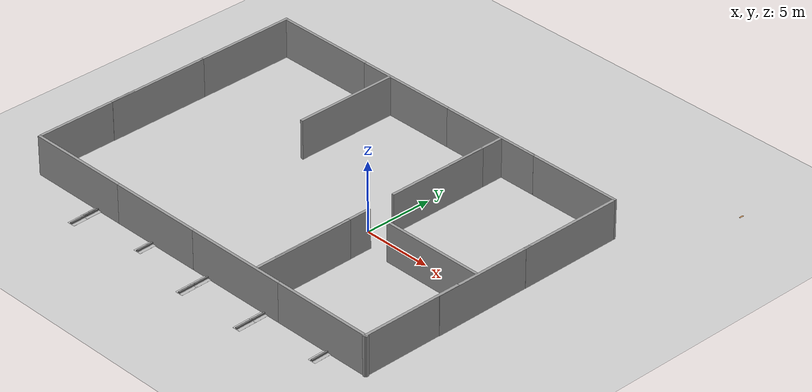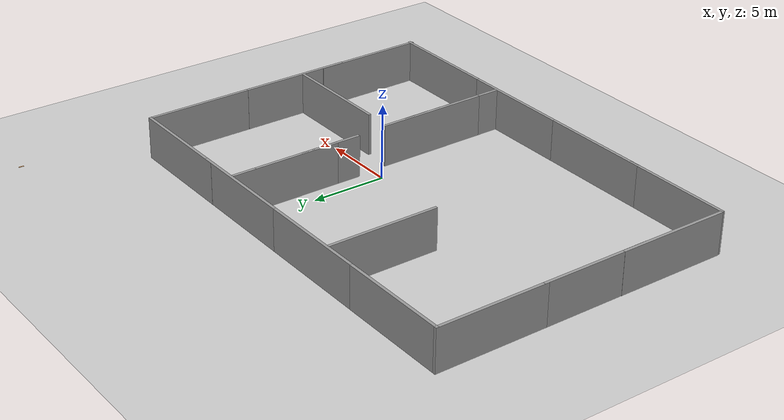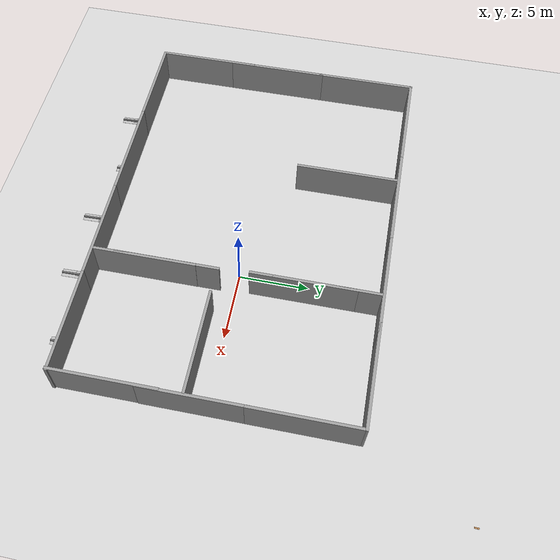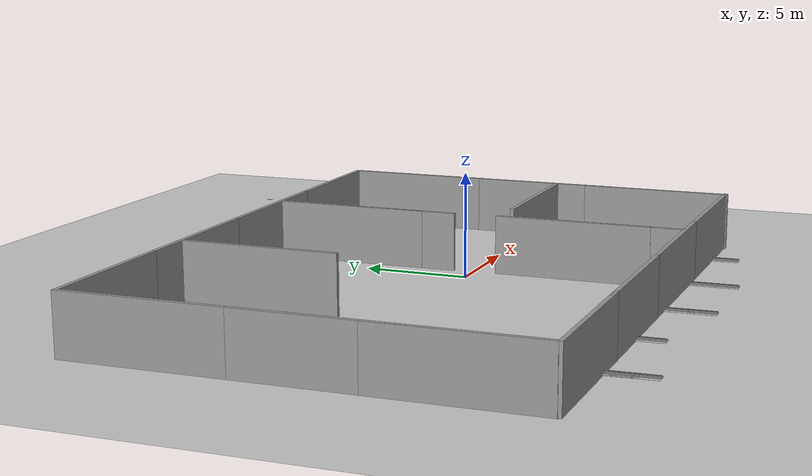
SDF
<sdf version="1.7">
 <world name="default">
  <model name="ground_plane">
   <static>1</static>
   <link name="link">
    <collision name="collision">
     <geometry><plane><normal>0 0 1</normal><size>100 100</size></plane></geometry>
     <surface>
      <contact><collide_bitmask>65535</collide_bitmask></contact>
      <friction><ode><mu>100</mu><mu2>50</mu2></ode></friction>
     </surface>
    </collision>
    <visual name="visual">
     <cast_shadows>0</cast_shadows>
     <geometry><plane><normal>0 0 1</normal><size>100 100</size></plane></geometry>
     <material>
      <script><uri>file://media/materials/scripts/gazebo.material</uri><name>Gazebo/Grey</name></script>
     </material>
    </visual>
   </link>
  </model>
  <model name="grey_wall">
   <static>1</static>
   <link name="link">
    <pose>0 0 1.4 0 -0 0</pose>
    <collision name="collision"><geometry><box><size>7.5 0.2 2.8</size></box></geometry></collision>
    <visual name="visual">
     <cast_shadows>0</cast_shadows>
     <geometry><box><size>7.5 0.2 2.8</size></box></geometry>
     <material>
      <script>
       <uri>https://fuel.ignitionrobotics.org/1.0/openrobotics/models/grey wall/2/files/materials/scripts</uri>
       <uri>https://fuel.ignitionrobotics.org/1.0/openrobotics/models/grey wall/2/files/materials/textures</uri>
       <name>vrc/grey_wall</name>
      </script>
     </material>
    </visual>
   </link>
   <pose>0.12422 10.16 0 0 -0 0</pose>
  </model>
  <model name="grey_wall_clone">
   <static>1</static>
   <link name="link">
    <pose>0 0 1.4 0 -0 0</pose>
    <collision name="collision"><geometry><box><size>7.5 0.2 2.8</size></box></geometry></collision>
    <visual name="visual">
     <cast_shadows>0</cast_shadows>
     <geometry><box><size>7.5 0.2 2.8</size></box></geometry>
     <material>
      <script>
       <uri>https://fuel.ignitionrobotics.org/1.0/openrobotics/models/grey wall/2/files/materials/scripts</uri>
       <uri>https://fuel.ignitionrobotics.org/1.0/openrobotics/models/grey wall/2/files/materials/textures</uri>
       <name>vrc/grey_wall</name>
      </script>
     </material>
    </visual>
   </link>
   <pose>6.92563 10.1635 0 0 -0 0</pose>
  </model>
  <model name="grey_wall_clone_0">
   <static>1</static>
   <link name="link">
    <pose>0 0 1.4 0 -0 0</pose>
    <collision name="collision"><geometry><box><size>7.5 0.2 2.8</size></box></geometry></collision>
    <visual name="visual">
     <cast_shadows>0</cast_shadows>
     <geometry><box><size>7.5 0.2 2.8</size></box></geometry>
     <material>
      <script>
       <uri>https://fuel.ignitionrobotics.org/1.0/openrobotics/models/grey wall/2/files/materials/scripts</uri>
       <uri>https://fuel.ignitionrobotics.org/1.0/openrobotics/models/grey wall/2/files/materials/textures</uri>
       <name>vrc/grey_wall</name>
      </script>
     </material>
    </visual>
   </link>
   <pose>-7.35355 10.1615 0 0 -0 0</pose>
  </model>
  <model name="grey_wall_clone_1">
   <static>1</static>
   <link name="link">
    <pose>0 0 1.4 0 -0 0</pose>
    <collision name="collision"><geometry><box><size>7.5 0.2 2.8</size></box></geometry></collision>
    <visual name="visual">
     <cast_shadows>0</cast_shadows>
     <geometry><box><size>7.5 0.2 2.8</size></box></geometry>
     <material>
      <script>
       <uri>https://fuel.ignitionrobotics.org/1.0/openrobotics/models/grey wall/2/files/materials/scripts</uri>
       <uri>https://fuel.ignitionrobotics.org/1.0/openrobotics/models/grey wall/2/files/materials/textures</uri>
       <name>vrc/grey_wall</name>
      </script>
     </material>
    </visual>
   </link>
   <pose>-14.8373 10.1676 0 0 -0 0</pose>
  </model>
  <model name="grey_wall_clone_2">
   <static>1</static>
   <link name="link">
    <pose>0 0 1.4 0 -0 0</pose>
    <collision name="collision"><geometry><box><size>7.5 0.2 2.8</size></box></geometry></collision>
    <visual name="visual">
     <cast_shadows>0</cast_shadows>
     <geometry><box><size>7.5 0.2 2.8</size></box></geometry>
     <material>
      <script>
       <uri>https://fuel.ignitionrobotics.org/1.0/openrobotics/models/grey wall/2/files/materials/scripts</uri>
       <uri>https://fuel.ignitionrobotics.org/1.0/openrobotics/models/grey wall/2/files/materials/textures</uri>
       <name>vrc/grey_wall</name>
      </script>
     </material>
    </visual>
   </link>
   <pose>7.07156 -10.1705 0 0 -0 0</pose>
  </model>
  <model name="grey_wall_clone_3">
   <static>1</static>
   <link name="link">
    <pose>0 0 1.4 0 -0 0</pose>
    <collision name="collision"><geometry><box><size>7.5 0.2 2.8</size></box></geometry></collision>
    <visual name="visual">
     <cast_shadows>0</cast_shadows>
     <geometry><box><size>7.5 0.2 2.8</size></box></geometry>
     <material>
      <script>
       <uri>https://fuel.ignitionrobotics.org/1.0/openrobotics/models/grey wall/2/files/materials/scripts</uri>
       <uri>https://fuel.ignitionrobotics.org/1.0/openrobotics/models/grey wall/2/files/materials/textures</uri>
       <name>vrc/grey_wall</name>
      </script>
     </material>
    </visual>
   </link>
   <pose>-0.417375 -10.1706 0 0 -0 0</pose>
  </model>
  <model name="grey_wall_clone_4">
   <static>1</static>
   <link name="link">
    <pose>0 0 1.4 0 -0 0</pose>
    <collision name="collision"><geometry><box><size>7.5 0.2 2.8</size></box></geometry></collision>
    <visual name="visual">
     <cast_shadows>0</cast_shadows>
     <geometry><box><size>7.5 0.2 2.8</size></box></geometry>
     <material>
      <script>
       <uri>https://fuel.ignitionrobotics.org/1.0/openrobotics/models/grey wall/2/files/materials/scripts</uri>
       <uri>https://fuel.ignitionrobotics.org/1.0/openrobotics/models/grey wall/2/files/materials/textures</uri>
       <name>vrc/grey_wall</name>
      </script>
     </material>
    </visual>
   </link>
   <pose>-7.91135 -10.1718 0 0 -0 0</pose>
  </model>
  <model name="grey_wall_clone_5">
   <static>1</static>
   <link name="link">
    <pose>0 0 1.4 0 -0 0</pose>
    <collision name="collision"><geometry><box><size>7.5 0.2 2.8</size></box></geometry></collision>
    <visual name="visual">
     <cast_shadows>0</cast_shadows>
     <geometry><box><size>7.5 0.2 2.8</size></box></geometry>
     <material>
      <script>
       <uri>https://fuel.ignitionrobotics.org/1.0/openrobotics/models/grey wall/2/files/materials/scripts</uri>
       <uri>https://fuel.ignitionrobotics.org/1.0/openrobotics/models/grey wall/2/files/materials/textures</uri>
       <name>vrc/grey_wall</name>
      </script>
     </material>
    </visual>
   </link>
   <pose>-14.7388 -10.1723 0 0 -0 0</pose>
  </model>
  <model name="frc2016_rockwall">
   <static>1</static>
   <link name="link">
    <inertial>
     <mass>10</mass>
     <pose>0 0 0.08974 0 -0 0</pose>
     <inertia><ixx>0.327091</ixx><ixy>0</ixy><ixz>0</ixz><iyy>1.37417</iyy><iyz>0</iyz><izz>1.64109</izz></inertia>
    </inertial>
    <visual name="platform">
     <pose>0 0 0.06432 0 -0 0</pose>
     <geometry><box><size>1.27 0.5969 0.003175</size></box></geometry>
    </visual>
    <collision name="platform">
     <pose>0 0 0.06432 0 -0 0</pose>
     <geometry><box><size>1.27 0.5969 0.003175</size></box></geometry>
    </collision>
    <visual name="up1">
     <pose>0 0.05166 0.12537 0 -0 0</pose>
     <geometry><box><size>1.27 0.00462 0.11892</size></box></geometry>
     <material><ambient>0.46 0.46 0.46 1</ambient><diffuse>0.46 0.46 0.46 1</diffuse></material>
    </visual>
    <collision name="up1">
     <pose>0 0.05166 0.12537 0 -0 0</pose>
     <geometry><box><size>1.27 0.00462 0.11892</size></box></geometry>
    </collision>
    <visual name="up2">
     <pose>0 -0.05801 0.12537 0 -0 0</pose>
     <geometry><box><size>1.27 0.00462 0.11892</size></box></geometry>
     <material><ambient>0.46 0.46 0.46 1</ambient><diffuse>0.46 0.46 0.46 1</diffuse></material>
    </visual>
    <collision name="up2">
     <pose>0 -0.05801 0.12537 0 -0 0</pose>
     <geometry><box><size>1.27 0.00462 0.11892</size></box></geometry>
    </collision>
    <visual name="top">
     <pose>0 -0.00249 0.18252 0 -0 0</pose>
     <geometry><box><size>1.27 0.1143 0.00462</size></box></geometry>
     <material><ambient>0.46 0.46 0.46 1</ambient><diffuse>0.46 0.46 0.46 1</diffuse></material>
    </visual>
    <collision name="top">
     <pose>0 -0.00249 0.18252 0 -0 0</pose>
     <geometry><box><size>1.27 0.1143 0.00462</size></box></geometry>
    </collision>
   </link>
   <pose>7.57205 -10.9231 0 0 -0 1.59626</pose>
  </model>
  <model name="grey_wall_clone_2_clone">
   <static>1</static>
   <link name="link">
    <pose>0 0 1.4 0 -0 0</pose>
    <collision name="collision"><geometry><box><size>7.5 0.2 2.8</size></box></geometry></collision>
    <visual name="visual">
     <cast_shadows>0</cast_shadows>
     <geometry><box><size>7.5 0.2 2.8</size></box></geometry>
     <material>
      <script>
       <uri>https://fuel.ignitionrobotics.org/1.0/openrobotics/models/grey wall/2/files/materials/scripts</uri>
       <uri>https://fuel.ignitionrobotics.org/1.0/openrobotics/models/grey wall/2/files/materials/textures</uri>
       <name>vrc/grey_wall</name>
      </script>
     </material>
    </visual>
   </link>
   <pose>10.6239 -6.57923 0 0 -0 1.5756</pose>
  </model>
  <model name="grey_wall_clone_2_clone_clone">
   <static>1</static>
   <link name="link">
    <pose>0 0 1.4 0 -0 0</pose>
    <collision name="collision"><geometry><box><size>7.5 0.2 2.8</size></box></geometry></collision>
    <visual name="visual">
     <cast_shadows>0</cast_shadows>
     <geometry><box><size>7.5 0.2 2.8</size></box></geometry>
     <material>
      <script>
       <uri>https://fuel.ignitionrobotics.org/1.0/openrobotics/models/grey wall/2/files/materials/scripts</uri>
       <uri>https://fuel.ignitionrobotics.org/1.0/openrobotics/models/grey wall/2/files/materials/textures</uri>
       <name>vrc/grey_wall</name>
      </script>
     </material>
    </visual>
   </link>
   <pose>10.6274 -0.701461 0 0 -0 1.5756</pose>
  </model>
  <model name="grey_wall_clone_2_clone_clone_0">
   <static>1</static>
   <link name="link">
    <pose>0 0 1.4 0 -0 0</pose>
    <collision name="collision"><geometry><box><size>7.5 0.2 2.8</size></box></geometry></collision>
    <visual name="visual">
     <cast_shadows>0</cast_shadows>
     <geometry><box><size>7.5 0.2 2.8</size></box></geometry>
     <material>
      <script>
       <uri>https://fuel.ignitionrobotics.org/1.0/openrobotics/models/grey wall/2/files/materials/scripts</uri>
       <uri>https://fuel.ignitionrobotics.org/1.0/openrobotics/models/grey wall/2/files/materials/textures</uri>
       <name>vrc/grey_wall</name>
      </script>
     </material>
    </visual>
   </link>
   <pose>10.5981 6.34643 0 0 -0 1.5756</pose>
  </model>
  <model name="grey_wall_clone_3_clone">
   <static>1</static>
   <link name="link">
    <pose>0 0 1.4 0 -0 0</pose>
    <collision name="collision"><geometry><box><size>7.5 0.2 2.8</size></box></geometry></collision>
    <visual name="visual">
     <cast_shadows>0</cast_shadows>
     <geometry><box><size>7.5 0.2 2.8</size></box></geometry>
     <material>
      <script>
       <uri>https://fuel.ignitionrobotics.org/1.0/openrobotics/models/grey wall/2/files/materials/scripts</uri>
       <uri>https://fuel.ignitionrobotics.org/1.0/openrobotics/models/grey wall/2/files/materials/textures</uri>
       <name>vrc/grey_wall</name>
      </script>
     </material>
    </visual>
   </link>
   <pose>6.82309 -1.27324 0 0 -0 0</pose>
  </model>
  <model name="grey_wall_clone_2_clone_clone_1">
   <static>1</static>
   <link name="link">
    <pose>0 0 1.4 0 -0 0</pose>
    <collision name="collision"><geometry><box><size>7.5 0.2 2.8</size></box></geometry></collision>
    <visual name="visual">
     <cast_shadows>0</cast_shadows>
     <geometry><box><size>7.5 0.2 2.8</size></box></geometry>
     <material>
      <script>
       <uri>https://fuel.ignitionrobotics.org/1.0/openrobotics/models/grey wall/2/files/materials/scripts</uri>
       <uri>https://fuel.ignitionrobotics.org/1.0/openrobotics/models/grey wall/2/files/materials/textures</uri>
       <name>vrc/grey_wall</name>
      </script>
     </material>
    </visual>
   </link>
   <pose>1.30679 -4.83365 0 0 -0 1.5756</pose>
  </model>
  <model name="grey_wall_clone_2_clone_clone_1_clone">
   <static>1</static>
   <link name="link">
    <pose>0 0 1.4 0 -0 0</pose>
    <collision name="collision"><geometry><box><size>7.5 0.2 2.8</size></box></geometry></collision>
    <visual name="visual">
     <cast_shadows>0</cast_shadows>
     <geometry><box><size>7.5 0.2 2.8</size></box></geometry>
     <material>
      <script>
       <uri>https://fuel.ignitionrobotics.org/1.0/openrobotics/models/grey wall/2/files/materials/scripts</uri>
       <uri>https://fuel.ignitionrobotics.org/1.0/openrobotics/models/grey wall/2/files/materials/textures</uri>
       <name>vrc/grey_wall</name>
      </script>
     </material>
    </visual>
   </link>
   <pose>1.32492 -6.49418 0 0 -0 1.5756</pose>
  </model>
  <model name="frc2016_rockwall_clone_6">
   <static>1</static>
   <link name="link">
    <inertial>
     <mass>10</mass>
     <pose>0 0 0.08974 0 -0 0</pose>
     <inertia><ixx>0.327091</ixx><ixy>0</ixy><ixz>0</ixz><iyy>1.37417</iyy><iyz>0</iyz><izz>1.64109</izz></inertia>
    </inertial>
    <visual name="platform">
     <pose>0 0 0.06432 0 -0 0</pose>
     <geometry><box><size>1.27 0.5969 0.003175</size></box></geometry>
    </visual>
    <collision name="platform">
     <pose>0 0 0.06432 0 -0 0</pose>
     <geometry><box><size>1.27 0.5969 0.003175</size></box></geometry>
    </collision>
    <visual name="up1">
     <pose>0 0.05166 0.12537 0 -0 0</pose>
     <geometry><box><size>1.27 0.00462 0.11892</size></box></geometry>
     <material><ambient>0.46 0.46 0.46 1</ambient><diffuse>0.46 0.46 0.46 1</diffuse></material>
    </visual>
    <collision name="up1">
     <pose>0 0.05166 0.12537 0 -0 0</pose>
     <geometry><box><size>1.27 0.00462 0.11892</size></box></geometry>
    </collision>
    <visual name="up2">
     <pose>0 -0.05801 0.12537 0 -0 0</pose>
     <geometry><box><size>1.27 0.00462 0.11892</size></box></geometry>
     <material><ambient>0.46 0.46 0.46 1</ambient><diffuse>0.46 0.46 0.46 1</diffuse></material>
    </visual>
    <collision name="up2">
     <pose>0 -0.05801 0.12537 0 -0 0</pose>
     <geometry><box><size>1.27 0.00462 0.11892</size></box></geometry>
    </collision>
    <visual name="top">
     <pose>0 -0.00249 0.18252 0 -0 0</pose>
     <geometry><box><size>1.27 0.1143 0.00462</size></box></geometry>
     <material><ambient>0.46 0.46 0.46 1</ambient><diffuse>0.46 0.46 0.46 1</diffuse></material>
    </visual>
    <collision name="top">
     <pose>0 -0.00249 0.18252 0 -0 0</pose>
     <geometry><box><size>1.27 0.1143 0.00462</size></box></geometry>
    </collision>
   </link>
   <pose>2.20397 -10.9427 0 0 -0 1.59626</pose>
  </model>
  <model name="frc2016_rockwall_clone_7">
   <static>1</static>
   <link name="link">
    <inertial>
     <mass>10</mass>
     <pose>0 0 0.08974 0 -0 0</pose>
     <inertia><ixx>0.327091</ixx><ixy>0</ixy><ixz>0</ixz><iyy>1.37417</iyy><iyz>0</iyz><izz>1.64109</izz></inertia>
    </inertial>
    <visual name="platform">
     <pose>0 0 0.06432 0 -0 0</pose>
     <geometry><box><size>1.27 0.5969 0.003175</size></box></geometry>
    </visual>
    <collision name="platform">
     <pose>0 0 0.06432 0 -0 0</pose>
     <geometry><box><size>1.27 0.5969 0.003175</size></box></geometry>
    </collision>
    <visual name="up1">
     <pose>0 0.05166 0.12537 0 -0 0</pose>
     <geometry><box><size>1.27 0.00462 0.11892</size></box></geometry>
     <material><ambient>0.46 0.46 0.46 1</ambient><diffuse>0.46 0.46 0.46 1</diffuse></material>
    </visual>
    <collision name="up1">
     <pose>0 0.05166 0.12537 0 -0 0</pose>
     <geometry><box><size>1.27 0.00462 0.11892</size></box></geometry>
    </collision>
    <visual name="up2">
     <pose>0 -0.05801 0.12537 0 -0 0</pose>
     <geometry><box><size>1.27 0.00462 0.11892</size></box></geometry>
     <material><ambient>0.46 0.46 0.46 1</ambient><diffuse>0.46 0.46 0.46 1</diffuse></material>
    </visual>
    <collision name="up2">
     <pose>0 -0.05801 0.12537 0 -0 0</pose>
     <geometry><box><size>1.27 0.00462 0.11892</size></box></geometry>
    </collision>
    <visual name="top">
     <pose>0 -0.00249 0.18252 0 -0 0</pose>
     <geometry><box><size>1.27 0.1143 0.00462</size></box></geometry>
     <material><ambient>0.46 0.46 0.46 1</ambient><diffuse>0.46 0.46 0.46 1</diffuse></material>
    </visual>
    <collision name="top">
     <pose>0 -0.00249 0.18252 0 -0 0</pose>
     <geometry><box><size>1.27 0.1143 0.00462</size></box></geometry>
    </collision>
   </link>
   <pose>2.21983 -11.9351 0 0 -0 1.59626</pose>
  </model>
  <model name="frc2016_rockwall_clone_14">
   <static>1</static>
   <link name="link">
    <inertial>
     <mass>10</mass>
     <pose>0 0 0.08974 0 -0 0</pose>
     <inertia><ixx>0.327091</ixx><ixy>0</ixy><ixz>0</ixz><iyy>1.37417</iyy><iyz>0</iyz><izz>1.64109</izz></inertia>
    </inertial>
    <visual name="platform">
     <pose>0 0 0.06432 0 -0 0</pose>
     <geometry><box><size>1.27 0.5969 0.003175</size></box></geometry>
    </visual>
    <collision name="platform">
     <pose>0 0 0.06432 0 -0 0</pose>
     <geometry><box><size>1.27 0.5969 0.003175</size></box></geometry>
    </collision>
    <visual name="up1">
     <pose>0 0.05166 0.12537 0 -0 0</pose>
     <geometry><box><size>1.27 0.00462 0.11892</size></box></geometry>
     <material><ambient>0.46 0.46 0.46 1</ambient><diffuse>0.46 0.46 0.46 1</diffuse></material>
    </visual>
    <collision name="up1">
     <pose>0 0.05166 0.12537 0 -0 0</pose>
     <geometry><box><size>1.27 0.00462 0.11892</size></box></geometry>
    </collision>
    <visual name="up2">
     <pose>0 -0.05801 0.12537 0 -0 0</pose>
     <geometry><box><size>1.27 0.00462 0.11892</size></box></geometry>
     <material><ambient>0.46 0.46 0.46 1</ambient><diffuse>0.46 0.46 0.46 1</diffuse></material>
    </visual>
    <collision name="up2">
     <pose>0 -0.05801 0.12537 0 -0 0</pose>
     <geometry><box><size>1.27 0.00462 0.11892</size></box></geometry>
    </collision>
    <visual name="top">
     <pose>0 -0.00249 0.18252 0 -0 0</pose>
     <geometry><box><size>1.27 0.1143 0.00462</size></box></geometry>
     <material><ambient>0.46 0.46 0.46 1</ambient><diffuse>0.46 0.46 0.46 1</diffuse></material>
    </visual>
    <collision name="top">
     <pose>0 -0.00249 0.18252 0 -0 0</pose>
     <geometry><box><size>1.27 0.1143 0.00462</size></box></geometry>
    </collision>
   </link>
   <pose>-2.84765 -10.8009 0 0 -0 1.59626</pose>
  </model>
  <model name="frc2016_rockwall_clone_15">
   <static>1</static>
   <link name="link">
    <inertial>
     <mass>10</mass>
     <pose>0 0 0.08974 0 -0 0</pose>
     <inertia><ixx>0.327091</ixx><ixy>0</ixy><ixz>0</ixz><iyy>1.37417</iyy><iyz>0</iyz><izz>1.64109</izz></inertia>
    </inertial>
    <visual name="platform">
     <pose>0 0 0.06432 0 -0 0</pose>
     <geometry><box><size>1.27 0.5969 0.003175</size></box></geometry>
    </visual>
    <collision name="platform">
     <pose>0 0 0.06432 0 -0 0</pose>
     <geometry><box><size>1.27 0.5969 0.003175</size></box></geometry>
    </collision>
    <visual name="up1">
     <pose>0 0.05166 0.12537 0 -0 0</pose>
     <geometry><box><size>1.27 0.00462 0.11892</size></box></geometry>
     <material><ambient>0.46 0.46 0.46 1</ambient><diffuse>0.46 0.46 0.46 1</diffuse></material>
    </visual>
    <collision name="up1">
     <pose>0 0.05166 0.12537 0 -0 0</pose>
     <geometry><box><size>1.27 0.00462 0.11892</size></box></geometry>
    </collision>
    <visual name="up2">
     <pose>0 -0.05801 0.12537 0 -0 0</pose>
     <geometry><box><size>1.27 0.00462 0.11892</size></box></geometry>
     <material><ambient>0.46 0.46 0.46 1</ambient><diffuse>0.46 0.46 0.46 1</diffuse></material>
    </visual>
    <collision name="up2">
     <pose>0 -0.05801 0.12537 0 -0 0</pose>
     <geometry><box><size>1.27 0.00462 0.11892</size></box></geometry>
    </collision>
    <visual name="top">
     <pose>0 -0.00249 0.18252 0 -0 0</pose>
     <geometry><box><size>1.27 0.1143 0.00462</size></box></geometry>
     <material><ambient>0.46 0.46 0.46 1</ambient><diffuse>0.46 0.46 0.46 1</diffuse></material>
    </visual>
    <collision name="top">
     <pose>0 -0.00249 0.18252 0 -0 0</pose>
     <geometry><box><size>1.27 0.1143 0.00462</size></box></geometry>
    </collision>
   </link>
   <pose>-2.81842 -11.9541 0 0 -0 1.59626</pose>
  </model>
  <model name="frc2016_rockwall_clone_23">
   <static>1</static>
   <link name="link">
    <inertial>
     <mass>10</mass>
     <pose>0 0 0.08974 0 -0 0</pose>
     <inertia><ixx>0.327091</ixx><ixy>0</ixy><ixz>0</ixz><iyy>1.37417</iyy><iyz>0</iyz><izz>1.64109</izz></inertia>
    </inertial>
    <visual name="platform">
     <pose>0 0 0.06432 0 -0 0</pose>
     <geometry><box><size>1.27 0.5969 0.003175</size></box></geometry>
    </visual>
    <collision name="platform">
     <pose>0 0 0.06432 0 -0 0</pose>
     <geometry><box><size>1.27 0.5969 0.003175</size></box></geometry>
    </collision>
    <visual name="up1">
     <pose>0 0.05166 0.12537 0 -0 0</pose>
     <geometry><box><size>1.27 0.00462 0.11892</size></box></geometry>
     <material><ambient>0.46 0.46 0.46 1</ambient><diffuse>0.46 0.46 0.46 1</diffuse></material>
    </visual>
    <collision name="up1">
     <pose>0 0.05166 0.12537 0 -0 0</pose>
     <geometry><box><size>1.27 0.00462 0.11892</size></box></geometry>
    </collision>
    <visual name="up2">
     <pose>0 -0.05801 0.12537 0 -0 0</pose>
     <geometry><box><size>1.27 0.00462 0.11892</size></box></geometry>
     <material><ambient>0.46 0.46 0.46 1</ambient><diffuse>0.46 0.46 0.46 1</diffuse></material>
    </visual>
    <collision name="up2">
     <pose>0 -0.05801 0.12537 0 -0 0</pose>
     <geometry><box><size>1.27 0.00462 0.11892</size></box></geometry>
    </collision>
    <visual name="top">
     <pose>0 -0.00249 0.18252 0 -0 0</pose>
     <geometry><box><size>1.27 0.1143 0.00462</size></box></geometry>
     <material><ambient>0.46 0.46 0.46 1</ambient><diffuse>0.46 0.46 0.46 1</diffuse></material>
    </visual>
    <collision name="top">
     <pose>0 -0.00249 0.18252 0 -0 0</pose>
     <geometry><box><size>1.27 0.1143 0.00462</size></box></geometry>
    </collision>
   </link>
   <pose>-7.84536 -10.8934 0 0 -0 1.59626</pose>
  </model>
  <model name="frc2016_rockwall_clone_32">
   <static>1</static>
   <link name="link">
    <inertial>
     <mass>10</mass>
     <pose>0 0 0.08974 0 -0 0</pose>
     <inertia><ixx>0.327091</ixx><ixy>0</ixy><ixz>0</ixz><iyy>1.37417</iyy><iyz>0</iyz><izz>1.64109</izz></inertia>
    </inertial>
    <visual name="platform">
     <pose>0 0 0.06432 0 -0 0</pose>
     <geometry><box><size>1.27 0.5969 0.003175</size></box></geometry>
    </visual>
    <collision name="platform">
     <pose>0 0 0.06432 0 -0 0</pose>
     <geometry><box><size>1.27 0.5969 0.003175</size></box></geometry>
    </collision>
    <visual name="up1">
     <pose>0 0.05166 0.12537 0 -0 0</pose>
     <geometry><box><size>1.27 0.00462 0.11892</size></box></geometry>
     <material><ambient>0.46 0.46 0.46 1</ambient><diffuse>0.46 0.46 0.46 1</diffuse></material>
    </visual>
    <collision name="up1">
     <pose>0 0.05166 0.12537 0 -0 0</pose>
     <geometry><box><size>1.27 0.00462 0.11892</size></box></geometry>
    </collision>
    <visual name="up2">
     <pose>0 -0.05801 0.12537 0 -0 0</pose>
     <geometry><box><size>1.27 0.00462 0.11892</size></box></geometry>
     <material><ambient>0.46 0.46 0.46 1</ambient><diffuse>0.46 0.46 0.46 1</diffuse></material>
    </visual>
    <collision name="up2">
     <pose>0 -0.05801 0.12537 0 -0 0</pose>
     <geometry><box><size>1.27 0.00462 0.11892</size></box></geometry>
    </collision>
    <visual name="top">
     <pose>0 -0.00249 0.18252 0 -0 0</pose>
     <geometry><box><size>1.27 0.1143 0.00462</size></box></geometry>
     <material><ambient>0.46 0.46 0.46 1</ambient><diffuse>0.46 0.46 0.46 1</diffuse></material>
    </visual>
    <collision name="top">
     <pose>0 -0.00249 0.18252 0 -0 0</pose>
     <geometry><box><size>1.27 0.1143 0.00462</size></box></geometry>
    </collision>
   </link>
   <pose>-12.8781 -10.9857 0 0 -0 1.59626</pose>
  </model>
  <model name="frc2016_rockwall_clone_33">
   <static>1</static>
   <link name="link">
    <inertial>
     <mass>10</mass>
     <pose>0 0 0.08974 0 -0 0</pose>
     <inertia><ixx>0.327091</ixx><ixy>0</ixy><ixz>0</ixz><iyy>1.37417</iyy><iyz>0</iyz><izz>1.64109</izz></inertia>
    </inertial>
    <visual name="platform">
     <pose>0 0 0.06432 0 -0 0</pose>
     <geometry><box><size>1.27 0.5969 0.003175</size></box></geometry>
    </visual>
    <collision name="platform">
     <pose>0 0 0.06432 0 -0 0</pose>
     <geometry><box><size>1.27 0.5969 0.003175</size></box></geometry>
    </collision>
    <visual name="up1">
     <pose>0 0.05166 0.12537 0 -0 0</pose>
     <geometry><box><size>1.27 0.00462 0.11892</size></box></geometry>
     <material><ambient>0.46 0.46 0.46 1</ambient><diffuse>0.46 0.46 0.46 1</diffuse></material>
    </visual>
    <collision name="up1">
     <pose>0 0.05166 0.12537 0 -0 0</pose>
     <geometry><box><size>1.27 0.00462 0.11892</size></box></geometry>
    </collision>
    <visual name="up2">
     <pose>0 -0.05801 0.12537 0 -0 0</pose>
     <geometry><box><size>1.27 0.00462 0.11892</size></box></geometry>
     <material><ambient>0.46 0.46 0.46 1</ambient><diffuse>0.46 0.46 0.46 1</diffuse></material>
    </visual>
    <collision name="up2">
     <pose>0 -0.05801 0.12537 0 -0 0</pose>
     <geometry><box><size>1.27 0.00462 0.11892</size></box></geometry>
    </collision>
    <visual name="top">
     <pose>0 -0.00249 0.18252 0 -0 0</pose>
     <geometry><box><size>1.27 0.1143 0.00462</size></box></geometry>
     <material><ambient>0.46 0.46 0.46 1</ambient><diffuse>0.46 0.46 0.46 1</diffuse></material>
    </visual>
    <collision name="top">
     <pose>0 -0.00249 0.18252 0 -0 0</pose>
     <geometry><box><size>1.27 0.1143 0.00462</size></box></geometry>
    </collision>
   </link>
   <pose>-12.8518 -11.85 0 0 -0 1.59626</pose>
  </model>
  <model name="frc2016_rockwall_clone_34">
   <static>1</static>
   <link name="link">
    <inertial>
     <mass>10</mass>
     <pose>0 0 0.08974 0 -0 0</pose>
     <inertia><ixx>0.327091</ixx><ixy>0</ixy><ixz>0</ixz><iyy>1.37417</iyy><iyz>0</iyz><izz>1.64109</izz></inertia>
    </inertial>
    <visual name="platform">
     <pose>0 0 0.06432 0 -0 0</pose>
     <geometry><box><size>1.27 0.5969 0.003175</size></box></geometry>
    </visual>
    <collision name="platform">
     <pose>0 0 0.06432 0 -0 0</pose>
     <geometry><box><size>1.27 0.5969 0.003175</size></box></geometry>
    </collision>
    <visual name="up1">
     <pose>0 0.05166 0.12537 0 -0 0</pose>
     <geometry><box><size>1.27 0.00462 0.11892</size></box></geometry>
     <material><ambient>0.46 0.46 0.46 1</ambient><diffuse>0.46 0.46 0.46 1</diffuse></material>
    </visual>
    <collision name="up1">
     <pose>0 0.05166 0.12537 0 -0 0</pose>
     <geometry><box><size>1.27 0.00462 0.11892</size></box></geometry>
    </collision>
    <visual name="up2">
     <pose>0 -0.05801 0.12537 0 -0 0</pose>
     <geometry><box><size>1.27 0.00462 0.11892</size></box></geometry>
     <material><ambient>0.46 0.46 0.46 1</ambient><diffuse>0.46 0.46 0.46 1</diffuse></material>
    </visual>
    <collision name="up2">
     <pose>0 -0.05801 0.12537 0 -0 0</pose>
     <geometry><box><size>1.27 0.00462 0.11892</size></box></geometry>
    </collision>
    <visual name="top">
     <pose>0 -0.00249 0.18252 0 -0 0</pose>
     <geometry><box><size>1.27 0.1143 0.00462</size></box></geometry>
     <material><ambient>0.46 0.46 0.46 1</ambient><diffuse>0.46 0.46 0.46 1</diffuse></material>
    </visual>
    <collision name="top">
     <pose>0 -0.00249 0.18252 0 -0 0</pose>
     <geometry><box><size>1.27 0.1143 0.00462</size></box></geometry>
    </collision>
   </link>
   <pose>-12.9052 -10.7783 0 0 -0 1.59626</pose>
  </model>
  <model name="grey_wall_clone_2_clone_clone_1_clone_0">
   <static>1</static>
   <link name="link">
    <pose>0 0 1.4 0 -0 0</pose>
    <collision name="collision"><geometry><box><size>7.5 0.2 2.8</size></box></geometry></collision>
    <visual name="visual">
     <cast_shadows>0</cast_shadows>
     <geometry><box><size>7.5 0.2 2.8</size></box></geometry>
     <material>
      <script>
       <uri>https://fuel.ignitionrobotics.org/1.0/openrobotics/models/grey wall/2/files/materials/scripts</uri>
       <uri>https://fuel.ignitionrobotics.org/1.0/openrobotics/models/grey wall/2/files/materials/textures</uri>
       <name>vrc/grey_wall</name>
      </script>
     </material>
    </visual>
   </link>
   <pose>1.09385 6.34416 0 0 -0 1.5756</pose>
  </model>
  <model name="grey_wall_clone_2_clone_clone_1_clone_0_clone">
   <static>1</static>
   <link name="link">
    <pose>0 0 1.4 0 -0 0</pose>
    <collision name="collision"><geometry><box><size>7.5 0.2 2.8</size></box></geometry></collision>
    <visual name="visual">
     <cast_shadows>0</cast_shadows>
     <geometry><box><size>7.5 0.2 2.8</size></box></geometry>
     <material>
      <script>
       <uri>https://fuel.ignitionrobotics.org/1.0/openrobotics/models/grey wall/2/files/materials/scripts</uri>
       <uri>https://fuel.ignitionrobotics.org/1.0/openrobotics/models/grey wall/2/files/materials/textures</uri>
       <name>vrc/grey_wall</name>
      </script>
     </material>
    </visual>
   </link>
   <pose>1.10287 4.70606 0 0 -0 1.5756</pose>
  </model>
  <model name="grey_wall_clone_2_clone_clone_2">
   <static>1</static>
   <link name="link">
    <pose>0 0 1.4 0 -0 0</pose>
    <collision name="collision"><geometry><box><size>7.5 0.2 2.8</size></box></geometry></collision>
    <visual name="visual">
     <cast_shadows>0</cast_shadows>
     <geometry><box><size>7.5 0.2 2.8</size></box></geometry>
     <material>
      <script>
       <uri>https://fuel.ignitionrobotics.org/1.0/openrobotics/models/grey wall/2/files/materials/scripts</uri>
       <uri>https://fuel.ignitionrobotics.org/1.0/openrobotics/models/grey wall/2/files/materials/textures</uri>
       <name>vrc/grey_wall</name>
      </script>
     </material>
    </visual>
   </link>
   <pose>-18.4836 6.52276 0 0 -0 1.5756</pose>
  </model>
  <model name="grey_wall_clone_2_clone_clone_3">
   <static>1</static>
   <link name="link">
    <pose>0 0 1.4 0 -0 0</pose>
    <collision name="collision"><geometry><box><size>7.5 0.2 2.8</size></box></geometry></collision>
    <visual name="visual">
     <cast_shadows>0</cast_shadows>
     <geometry><box><size>7.5 0.2 2.8</size></box></geometry>
     <material>
      <script>
       <uri>https://fuel.ignitionrobotics.org/1.0/openrobotics/models/grey wall/2/files/materials/scripts</uri>
       <uri>https://fuel.ignitionrobotics.org/1.0/openrobotics/models/grey wall/2/files/materials/textures</uri>
       <name>vrc/grey_wall</name>
      </script>
     </material>
    </visual>
   </link>
   <pose>-18.4486 -0.706292 0 0 -0 1.5756</pose>
  </model>
  <model name="grey_wall_clone_2_clone_clone_4">
   <static>1</static>
   <link name="link">
    <pose>0 0 1.4 0 -0 0</pose>
    <collision name="collision"><geometry><box><size>7.5 0.2 2.8</size></box></geometry></collision>
    <visual name="visual">
     <cast_shadows>0</cast_shadows>
     <geometry><box><size>7.5 0.2 2.8</size></box></geometry>
     <material>
      <script>
       <uri>https://fuel.ignitionrobotics.org/1.0/openrobotics/models/grey wall/2/files/materials/scripts</uri>
       <uri>https://fuel.ignitionrobotics.org/1.0/openrobotics/models/grey wall/2/files/materials/textures</uri>
       <name>vrc/grey_wall</name>
      </script>
     </material>
    </visual>
   </link>
   <pose>-18.4323 -6.36628 0 0 -0 1.5756</pose>
  </model>
  <model name="wooden_board_clone_1">
   <link name="base">
    <pose>0 0 0.00523 0 -0 0</pose>
    <inertial>
     <mass>0.2765</mass>
     <inertia>
      <ixx>0.0025148</ixx>
      <ixy>0</ixy>
      <ixz>0</ixz>
      <iyy>0.00024037</iyy>
      <iyz>0</iyz>
      <izz>0.00275013</izz>
     </inertia>
    </inertial>
    <collision name="collision">
     <geometry><box><size>0.1016 0.3302 0.01046</size></box></geometry>
     <surface>
      <contact>
       <poissons_ratio>0.347</poissons_ratio>
       <elastic_modulus>8.8e+09</elastic_modulus>
       <ode><kp>100000</kp><kd>100</kd><max_vel>100</max_vel><min_depth>0.001</min_depth></ode>
      </contact>
      <friction>
       <torsional>
        <coefficient>1</coefficient>
        <use_patch_radius>0</use_patch_radius>
        <surface_radius>0.01</surface_radius>
       </torsional>
      </friction>
     </surface>
    </collision>
    <visual name="visual">
     <geometry><box><size>0.1016 0.3302 0.01046</size></box></geometry>
     <material>
      <script><uri>file://media/materials/scripts/gazebo.material</uri><name>Gazebo/Wood</name></script>
     </material>
    </visual>
    <visual name="tee_nut_1">
     <pose>0 -0.116 0 0 -0 0</pose>
     <geometry><cylinder><radius>0.00635</radius><length>0.0105646</length></cylinder></geometry>
     <material>
      <script><uri>file://media/materials/scripts/gazebo.material</uri><name>Gazebo/Grey</name></script>
     </material>
    </visual>
    <visual name="tee_nut_2">
     <pose>0 -0.038 0 0 -0 0</pose>
     <geometry><cylinder><radius>0.00635</radius><length>0.0105646</length></cylinder></geometry>
     <material>
      <script><uri>file://media/materials/scripts/gazebo.material</uri><name>Gazebo/Grey</name></script>
     </material>
    </visual>
    <visual name="tee_nut_3">
     <pose>0 0.038 0 0 -0 0</pose>
     <geometry><cylinder><radius>0.00635</radius><length>0.0105646</length></cylinder></geometry>
     <material>
      <script><uri>file://media/materials/scripts/gazebo.material</uri><name>Gazebo/Grey</name></script>
     </material>
    </visual>
    <visual name="tee_nut_4">
     <pose>0 0.116 0 0 -0 0</pose>
     <geometry><cylinder><radius>0.00635</radius><length>0.0105646</length></cylinder></geometry>
     <material>
      <script><uri>file://media/materials/scripts/gazebo.material</uri><name>Gazebo/Grey</name></script>
     </material>
    </visual>
   </link>
   <pose>14.2623 17.5099 -0.001007 0 0 -0.00012</pose>
  </model>
  <model name="grey_wall_clone_2_clone_clone_1_clone_0_clone_0">
   <static>1</static>
   <link name="link">
    <pose>0 0 1.4 0 -0 0</pose>
    <collision name="collision"><geometry><box><size>7.5 0.2 2.8</size></box></geometry></collision>
    <visual name="visual">
     <cast_shadows>0</cast_shadows>
     <geometry><box><size>7.5 0.2 2.8</size></box></geometry>
     <material>
      <script>
       <uri>https://fuel.ignitionrobotics.org/1.0/openrobotics/models/grey wall/2/files/materials/scripts</uri>
       <uri>https://fuel.ignitionrobotics.org/1.0/openrobotics/models/grey wall/2/files/materials/textures</uri>
       <name>vrc/grey_wall</name>
      </script>
     </material>
    </visual>
   </link>
   <pose>-8.78085 6.35768 0 0 -0 1.5756</pose>
  </model>
 </world>
</sdf>
